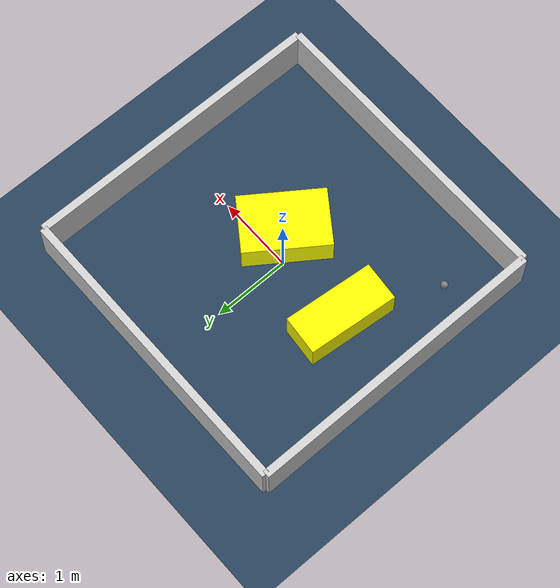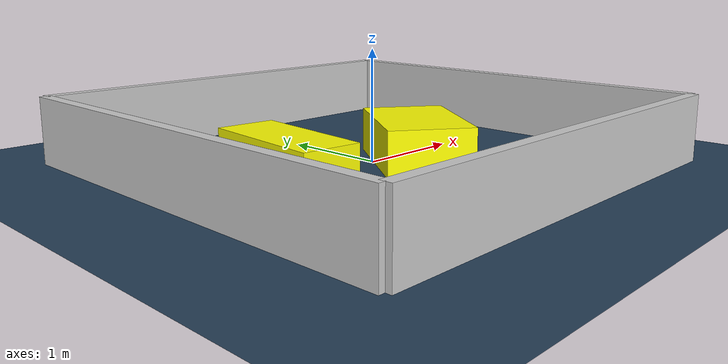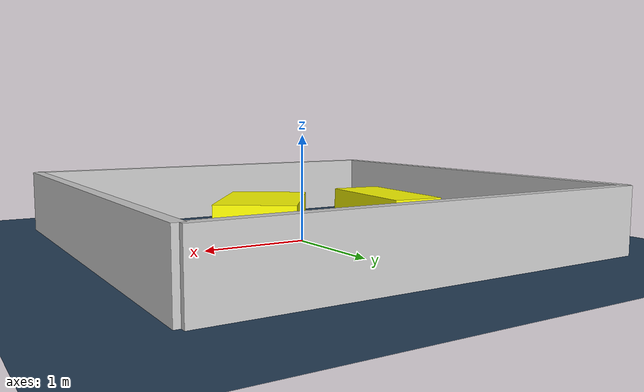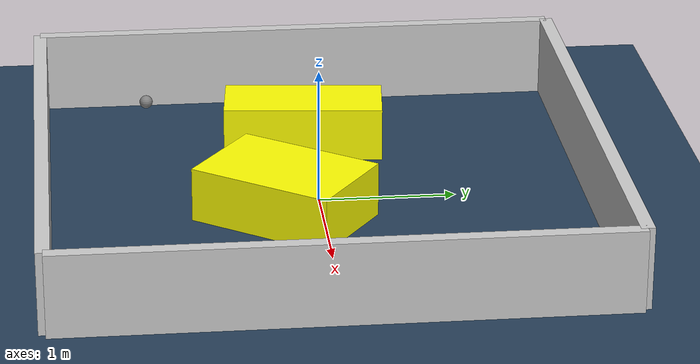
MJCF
<?xml version="1.0" ?>
<mujoco model="generated_environment">
  <option timestep="0.01" integrator="RK4" cone="elliptic"/>
  <default>
    <geom density="1"/>
  </default>
  <asset>
    <texture builtin="gradient" height="3072" rgb1="0.3 0.5 0.7" rgb2="0 0 0" type="skybox" width="512"/>
    <texture builtin="checker" height="300" mark="edge" markrgb="0.8 0.8 0.8" name="groundplane" rgb1="0.2 0.3 0.4" rgb2="0.1 0.2 0.3" type="2d" width="300"/>
    <material name="groundplane" reflectance="0.2" texrepeat="5 5" texture="groundplane" texuniform="true"/>
    <material name="robot" rgba="0.0 1.0 0.0 1"/>
  </asset>
  <worldbody>
    <light dir="0 0 -1" directional="true" pos="0 0 1.5"/>
    <geom condim="4" friction="1.0 0.005 0.001" material="groundplane" name="floor" size="0 0 0.05" type="plane"/>
    <body name="walls">
      <geom name="wall_1" condim="4" pos="-2.0 0.0 0.3" rgba="0.800000011920929 0.800000011920929 0.800000011920929 1.0" size="0.05 2.0 0.3" type="box"/>
      <geom name="wall_2" condim="4" pos="2.0 0.0 0.3" rgba="0.800000011920929 0.800000011920929 0.800000011920929 1.0" size="0.05 2.0 0.3" type="box"/>
      <geom name="wall_3" condim="4" pos="0.0 -2.0 0.3" rgba="0.800000011920929 0.800000011920929 0.800000011920929 1.0" size="2.0 0.05 0.3" type="box"/>
      <geom name="wall_4" condim="4" pos="0.0 2.0 0.3" rgba="0.800000011920929 0.800000011920929 0.800000011920929 1.0" size="2.0 0.05 0.3" type="box"/>
    </body>
    <body name="robot">
      <joint name="joint_x" type="slide" pos="0 0 0" axis="1 0 0"/>
      <joint name="joint_y" type="slide" pos="0 0 0" axis="0 1 0"/>
      <geom name="robot" type="sphere" pos="-1.5307131909759484 -1.199061601777669 0.2" size="0.05" mass="5." friction="1.0 0.005 0.0001" condim="4"/>
      <site name="sensor_ball"/>
    </body>
    <body name="obstacle_1_movable">
      <geom name="obstacle_1_movable" condim="4" pos="0.2824986541833583 -0.27001278381662797 0.2" euler="0 0 234.59412433544372" friction="1.0 0.005 0.001" rgba="1 1 0 1" size="0.5549059857059624 0.37772751659488635 0.2" type="box" mass="0.1"/>
      <joint type="free"/>
    </body>
    <body name="obstacle_2_movable">
      <geom name="obstacle_2_movable" condim="4" pos="-1.003505351534412 -0.024414817803865452 0.2" euler="0 0 174.5303300595596" friction="1.0 0.005 0.001" rgba="1 1 0 1" size="0.25875412874934567 0.5956677163558 0.2" type="box" mass="0.1"/>
      <joint type="free"/>
    </body>
  </worldbody>
  <actuator>
    <motor name="actuator_x" joint="joint_x" gear="1" ctrlrange="-1 1"/>
    <motor name="actuator_y" joint="joint_y" gear="1" ctrlrange="-1 1"/>
  </actuator>
</mujoco>
